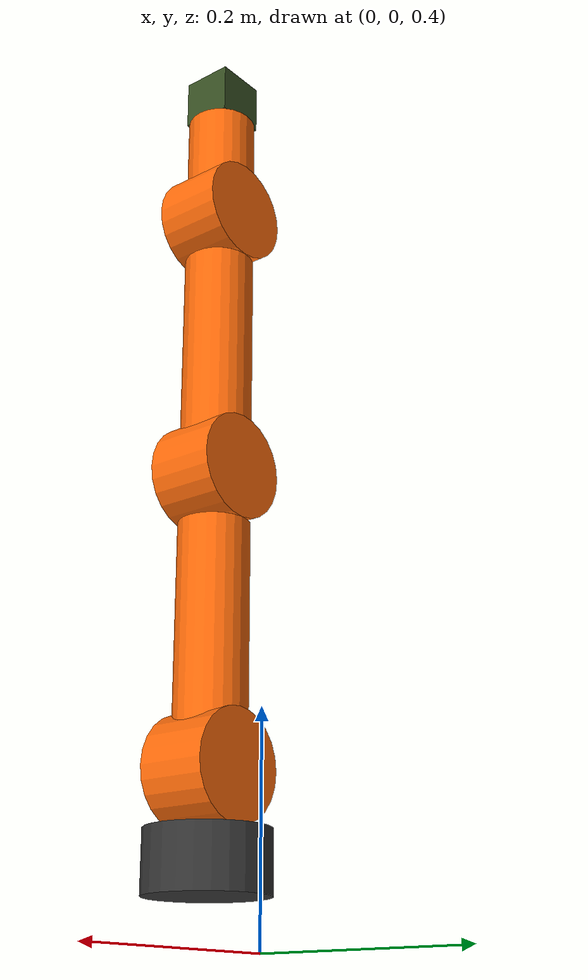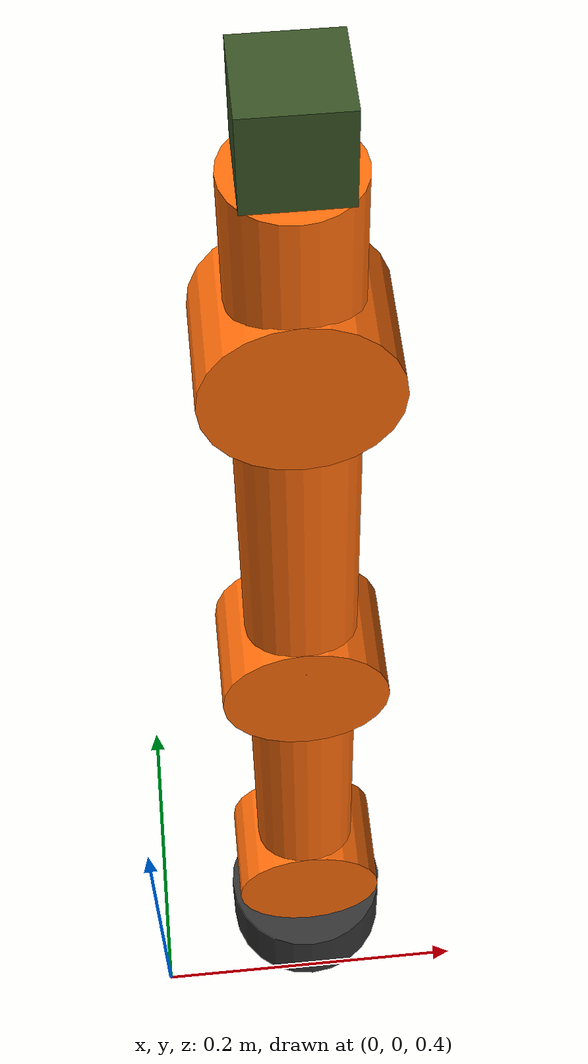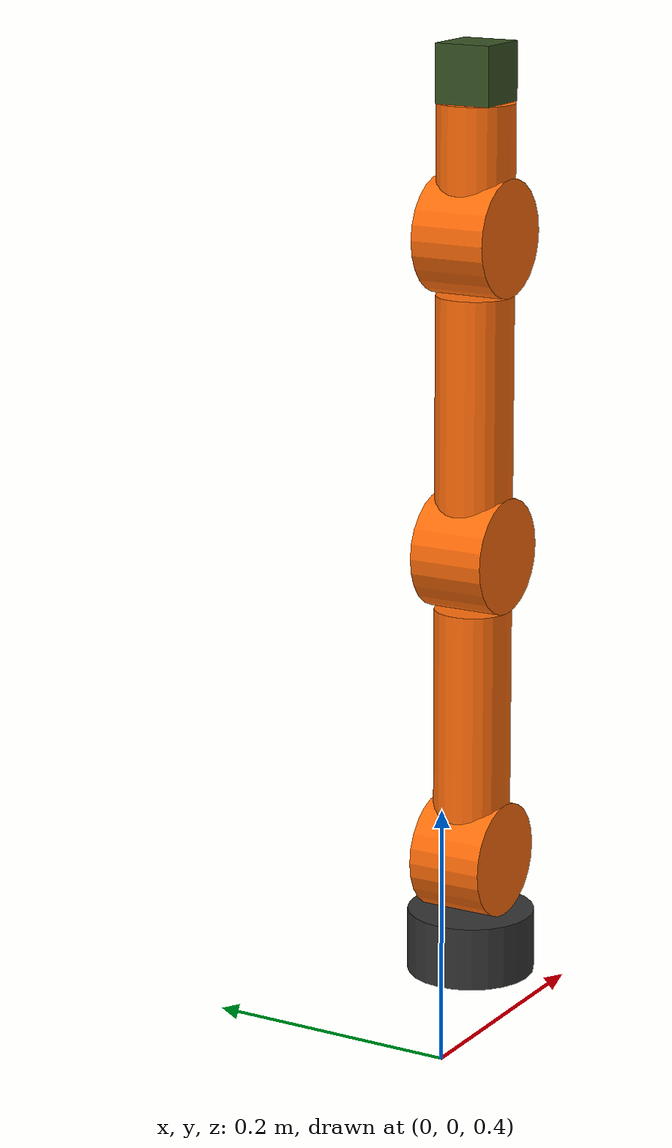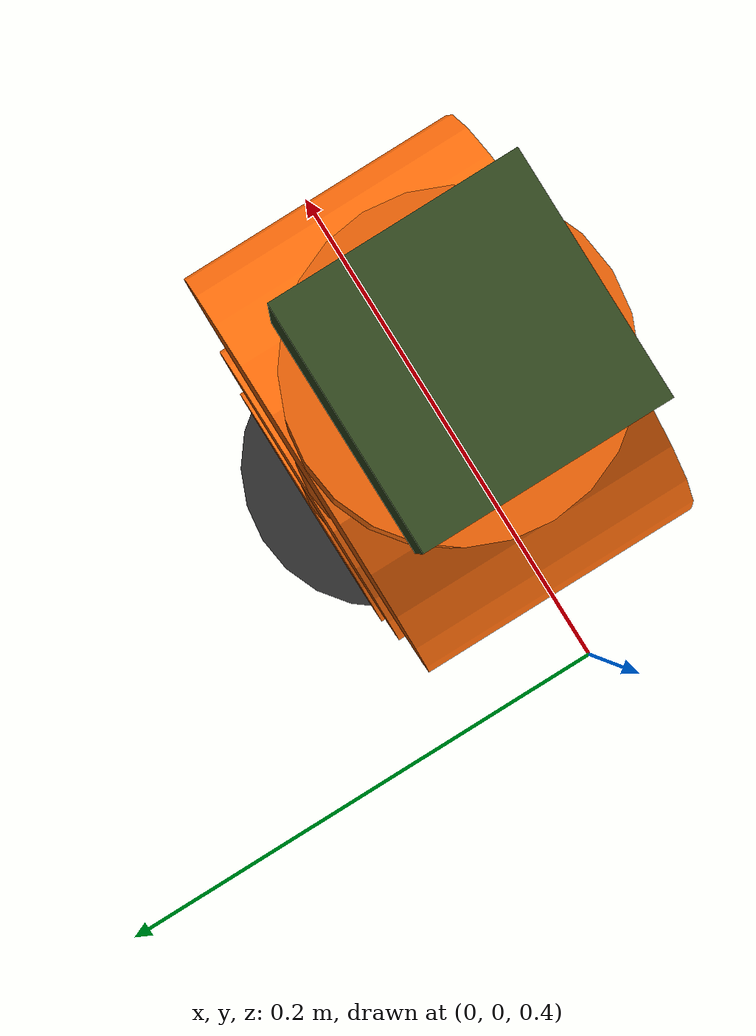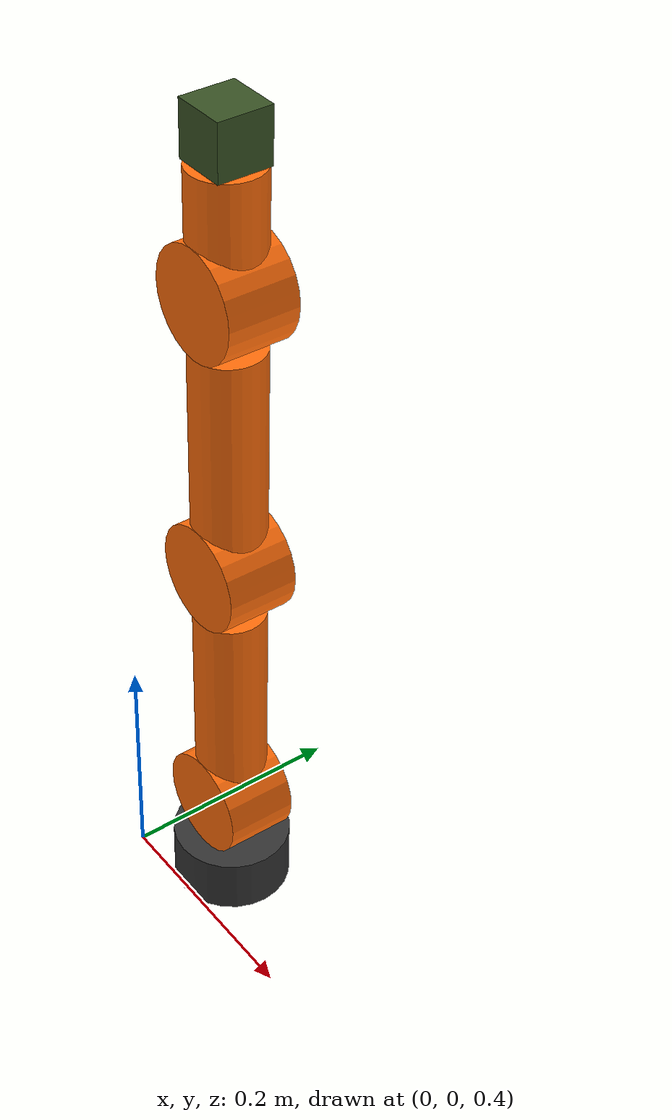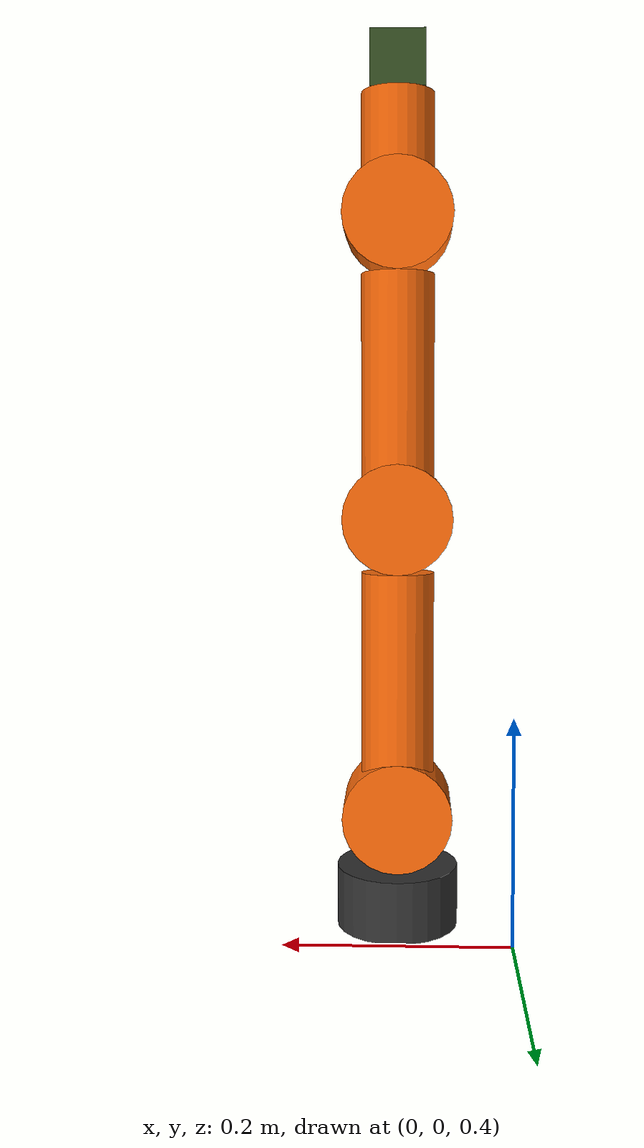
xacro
<?xml version="1.0"?>
<robot name="poke_arm" xmlns:xacro="http://ros.org/wiki/xacro"
    xmlns:sensor="http://playerstage.sourceforge.net/gazebo/xmlschema/#sensor"
    xmlns:controller="http://playerstage.sourceforge.net/gazebo/xmlschema/#controller"
    xmlns:interface="http://playerstage.sourceforge.net/gazebo/xmlschema/#interface">

    <!-- Included URDF Files -->
    <xacro:include filename="$(find poke_description)/urdf/poke.xacro" />

    <!-- As we don't have here a turtlebot, add a base_link link as its location reference -->
    <link name="base_link"/>

    <poke_arm parent="base_link" color="white" joints_vlimit="1.571">
      <!-- Place the "floating" arm at the location it should be if mounted on a turtlebot,
           as pick and place and other demos assume this location -->
      <origin xyz="0.1 0.03 0.435"/>
    </poke_arm>
</robot>

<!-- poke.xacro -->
<robot xmlns:xacro="http://ros.org/wiki/xacro">
  <!-- Imports -->
  <!-- Get parts from the hardware xacro file -->
  <xacro:include filename="$(find poke_description)/urdf/poke_hardware.xacro"/>
  <!-- Gazebo settings -->
  <xacro:include filename="$(find poke_description)/urdf/poke.gazebo"/>

  <!-- Var -->
  <xacro:property name="PI" value="3.14159"/>
  <xacro:property name="rb" value="0.05" />        <!-- Cylinder Radius Base -->
  <xacro:property name="r0" value="0.03" />        <!-- Cylinder Radius -->
  <xacro:property name="l0" value="0.05" />        <!-- Cylinder Length Base-->
  <xacro:property name="jr" value="${1.5*r0}" />   <!-- Joint cylinder Radius -->
  <xacro:property name="l1" value="0.2" />         <!-- Cylinder Length Primary-->
  <xacro:property name="l2" value="0.1" />         <!-- Cylinder Length Secondary-->
  <xacro:property name="mass" value="0.5" />       <!-- arbitrary value for mass -->

  <material name="white">
    <color rgba="0.87 0.90 0.87 1.0"/>
   </material>
  <material name="black">
    <color rgba="0.0 0.0 0.0 1.0"/>
   </material>
  <material name="green">
    <color rgba="0.22 0.32 0.14 1.0"/>
   </material>
  <material name="grey">
     <color rgba="0.2 0.2 0.2 1.0"/>
   </material>
  <material name="orange">
     <color rgba="1.0 ${108/255} ${10/255} 1.0"/>
   </material>

  <xacro:macro name="poke_arm" params="parent color *origin joints_vlimit">
  <!-- base_link -->
  <link name="poke_base_link" />
  <joint name="poke_base_joint" type="fixed">
    <insert_block name="origin" />
    <parent link="${parent}"/>
    <child link="poke_base_link" />
   </joint>

  <!-- Base mount-->
  <base_mount parent="poke_base_link" name="baseMount" color="grey">
  <origin xyz="0 0 0" rpy="0 0 0"/>
  </base_mount>
  <!-- Torso [p0] -->
  <segmentL parent="baseMount_link" name="p0" color="orange"
    llimit="-${1/3*PI}" ulimit="${0.48*PI}" vlimit="5">
    <origin rpy="0 0 0" xyz="0.0 0.0 ${l0+jr}" />
  </segmentL>
  <!-- Shoulder [p1] -->
  <segmentL parent="p0_link" name="p1" color="orange"
    llimit="0" ulimit="${2/3*PI}" vlimit="5">
    <origin rpy="0 0 0" xyz="0.0 0.0 ${l1+jr}" />
  </segmentL>
  <!-- Arm [p2] -->
  <segmentS parent="p1_link" name="p2" color="orange"
    llimit="-${2/3*PI}" ulimit="${2/3*PI}" vlimit="5"/>
  <!-- Wrist [p3] -->
  <cSeg parent="p2_link" name="p3" color="green"/>

  <!-- Motor Transmission -->
  <mtrT jointName="p0_joint"/>
  <mtrT jointName="p1_joint"/>
  <mtrT jointName="p2_joint"/>

  </xacro:macro>
</robot>

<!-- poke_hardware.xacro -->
<robot xmlns:xacro="http://ros.org/wiki/xacro">
  <!-- macro for arm base mount -->
  <xacro:macro name="base_mount" params="parent name color *origin">
    <joint name="${name}_joint" type="fixed">
      <insert_block name="origin" />
      <parent link="${parent}"/>
      <child link="${name}_link" />
    </joint>

    <link name="${name}_link">
      <inertial>
        <mass value="${mass}" />
        <origin xyz="0 0 ${l0/2}" />
        <inertia ixx="1.0" ixy="0.0" ixz="0.0"
          iyy="1.0" iyz="0.0"
          izz="1.0" />
      </inertial>

      <visual>
      <origin xyz="0 0 ${l0/2}" />
        <geometry>
        <cylinder length="${l0}" radius="${rb}" />
        </geometry>
        <material name="${color}"/>
      </visual>

      <collision>
      <origin xyz="0 0 ${l0/2}" />
        <geometry>
        <cylinder length="${l0}" radius="${rb}" />
        </geometry>
      </collision>
    </link>
  </xacro:macro>

  <!-- macro for one segment, long -->
  <xacro:macro name="segmentL" params="parent name color llimit ulimit vlimit *origin">
    <joint name="${name}_joint" type="revolute">
      <insert_block name="origin" />
      <parent link="${parent}"/>
      <child link="${name}_link" />
      <axis xyz="0 1 0" />
      <limit lower="${llimit}" upper="${ulimit}" velocity="${vlimit}" effort="30" />
      <!--origin rpy="0 0 0" xyz="0.0 0.0 ${l1+jr}" /-->
    </joint>

    <link name="${name}_link">
      <inertial>
        <mass value="${mass}" />
        <origin rpy="0 0 0" xyz="0 0 ${l1/2}" />
        <inertia ixx="1.0" ixy="0.0" ixz="0.0"
          iyy="1.0" iyz="0.0"
          izz="1.0" />
          <origin rpy="0 0 0" xyz="0 0 ${l1/2}" />
      </inertial>
      <!-- Visual for segment joint -->
      <visual name="${name}_joint_v">
         <geometry>
            <cylinder length="${2*r0}" radius="${jr}" />
         </geometry>
         <origin rpy="${PI/2} 0 0" xyz="0 0 0" />
         <material name="${color}"/>
      </visual>
      <collision name="${name}_joint_c">
         <geometry>
            <cylinder length="${2*r0}" radius="${jr}" />
         </geometry>
         <origin rpy="${PI/2} 0 0" xyz="0 0 0" />
      </collision>
      <!-- Visual for main segment -->
      <visual name="${name}_segmentL_v">
         <geometry>
            <cylinder length="${l1}" radius="${r0}" />
         </geometry>
         <origin rpy="0 0 0" xyz="0 0 ${l1/2}" />
         <material name="${color}"/>
      </visual>
      <collision name="${name}_segmentL_c">
         <geometry>
            <cylinder length="${l1}" radius="${r0}" />
         </geometry>
         <origin rpy="0 0 0" xyz="0 0 ${l1/2}" />
      </collision>
    </link>
  </xacro:macro>

  <!-- macro for one segment, short -->
  <xacro:macro name="segmentS" params="parent name color llimit ulimit vlimit">
    <joint name="${name}_joint" type="revolute">
      <parent link="${parent}"/>
      <child link="${name}_link" />
      <axis xyz="0 1 0" />
      <limit lower="${llimit}" upper="${ulimit}" velocity="${vlimit}" effort="30" />
      <origin rpy="0 0 0" xyz="0.0 0.0 ${l1+jr}" />
    </joint>

    <link name="${name}_link">
      <inertial>
        <mass value="${mass}" />
        <inertia ixx="1.0" ixy="0.0" ixz="0.0"
          iyy="1.0" iyz="0.0"
          izz="1.0" />
        <origin rpy="0 0 0" xyz="0 0 ${l2/2}" />
      </inertial>
      <!-- Visual for segment joint -->
      <visual name="${name}_joint_v">
         <geometry>
            <cylinder length="${2*r0}" radius="${jr}" />
         </geometry>
         <origin rpy="${PI/2} 0 0" xyz="0 0 0" />
         <material name="${color}"/>
      </visual>
      <collision name="${name}_joint_c">
         <geometry>
            <cylinder length="${2*r0}" radius="${jr}" />
         </geometry>
         <origin rpy="${PI/2} 0 0" xyz="0 0 0" />
      </collision>
      <!-- Visual for main segment -->
      <visual name="${name}_segmentS_v">
         <geometry>
            <cylinder length="${l2}" radius="${r0}" />
         </geometry>
         <origin rpy="0 0 0" xyz="0 0 ${l2/2}" />
         <material name="${color}"/>
      </visual>
      <collision name="${name}_segmentS_c">
         <geometry>
            <cylinder length="${l2}" radius="${r0}" />
         </geometry>
         <origin rpy="0 0 0" xyz="0 0 ${l2/2}" />
      </collision>
    </link>
  </xacro:macro>

  <!-- macro for continuous segment -->
  <xacro:macro name="cSeg" params="parent name color">
    <joint name="${name}_joint" type="continuous">
      <parent link="${parent}"/>
      <child link="${name}_link" />
      <origin rpy="0 0 0" xyz="0.0 0.0 ${l2+jr/2}" />
    </joint>

    <link name="${name}_link">
      <inertial>
        <mass value="${mass}" />
        <origin rpy="0 0 0" xyz="0 0 0" />
        <inertia ixx="1.0" ixy="0.0" ixz="0.0"
          iyy="1.0" iyz="0.0"
          izz="1.0" />
      </inertial>
      <!-- Visual for segment -->
      <visual name="${name}_cSeg_v">
         <geometry>
         <box size="${jr} ${jr} ${jr}" />
         </geometry>
         <material name="${color}"/>
         <origin rpy="0 0 0" xyz="0 0 0" />
      </visual>
      <collision name="${name}_cSeg_c">
         <geometry>
         <box size="${jr} ${jr} ${jr}" />
         </geometry>
         <origin rpy="0 0 0" xyz="0 0 0" />
      </collision>
    </link>
  </xacro:macro>

  <!-- Macro for motor transmission -->
  <xacro:macro name="mtrT" params="jointName">
   <transmission name="${jointName}_tran">
     <type>transmission_interface/SimpleTransmission</type>
     <joint name="${jointName}">
        <hardwareInterface>PositionJointInterface</hardwareInterface>
     </joint>
     <actuator name="${jointName}_motor">
        <hardwareInterface>PositionJointInterface</hardwareInterface>
        <mechanicalReduction>1</mechanicalReduction>
     </actuator>
   </transmission>
  </xacro:macro>
  </robot>
